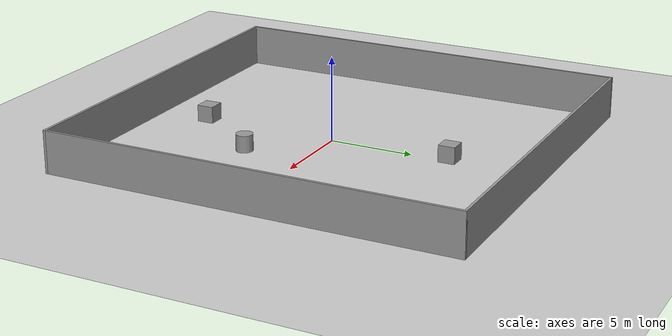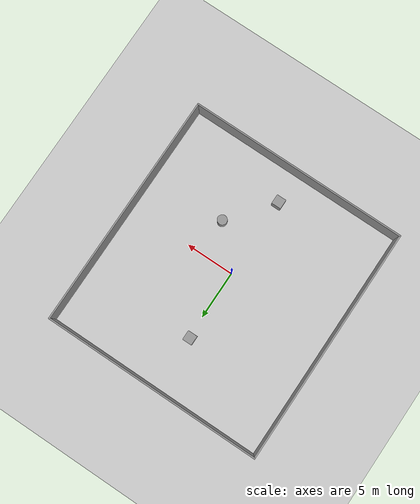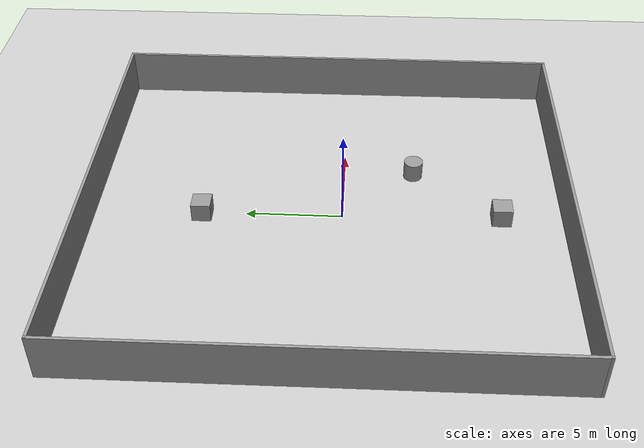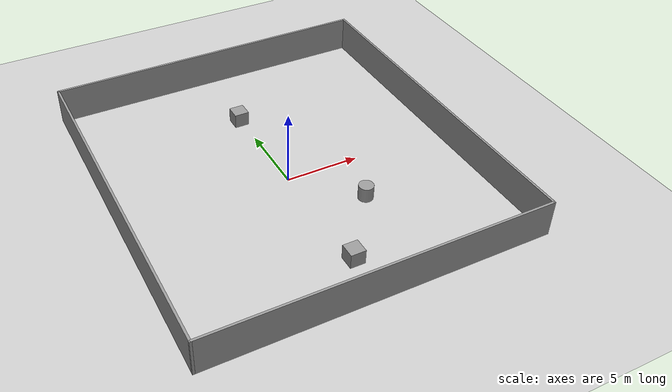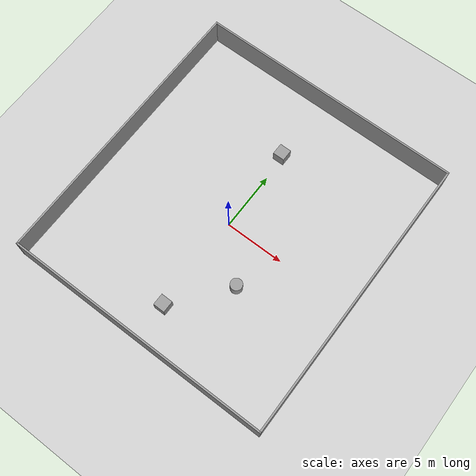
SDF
<sdf version="1.7">
 <world name="default">
  <light name="sun" type="directional">
   <pose>0 0 10 0 -0 0</pose>
   <diffuse>0.8 0.8 0.8 1</diffuse>
   <specular>0.2 0.2 0.2 1</specular>
   <attenuation>
    <range>1000</range>
    <constant>0.9</constant>
    <linear>0.01</linear>
    <quadratic>0.001</quadratic>
   </attenuation>
   <direction>-0.5 0.1 -0.9</direction>
   <spot><inner_angle>0</inner_angle><outer_angle>0</outer_angle><falloff>0</falloff></spot>
  </light>
  <model name="ground_plane">
   <static>1</static>
   <link name="link">
    <collision name="collision">
     <geometry><plane><normal>0 0 1</normal><size>100 100</size></plane></geometry>
     <surface>
      <contact><collide_bitmask>65535</collide_bitmask></contact>
      <friction><ode><mu>100</mu><mu2>50</mu2></ode></friction>
     </surface>
    </collision>
    <visual name="visual">
     <cast_shadows>0</cast_shadows>
     <geometry><plane><normal>0 0 1</normal><size>100 100</size></plane></geometry>
     <material>
      <script><uri>file://media/materials/scripts/gazebo.material</uri><name>Gazebo/Grey</name></script>
     </material>
    </visual>
   </link>
  </model>
  <gravity>0 0 -9.8</gravity>
  <magnetic_field>6e-06 2.3e-05 -4.2e-05</magnetic_field>
  <atmosphere type="adiabatic"/>
  <physics type="ode">
   <max_step_size>0.001</max_step_size>
   <real_time_factor>1</real_time_factor>
   <real_time_update_rate>1000</real_time_update_rate>
  </physics>
  <scene><ambient>0.4 0.4 0.4 1</ambient><background>0.7 0.7 0.7 1</background><shadows>1</shadows></scene>
  <audio><device>default</device></audio>
  <spherical_coordinates>
   <surface_model>EARTH_WGS84</surface_model>
   <latitude_deg>0</latitude_deg>
   <longitude_deg>0</longitude_deg>
   <elevation>0</elevation>
   <heading_deg>0</heading_deg>
  </spherical_coordinates>
  <model name="Untitled">
   <pose>0.158541 0.757398 0 0 -0 0</pose>
   <link name="Wall_21">
    <collision name="Wall_21_Collision">
     <geometry><box><size>24.5 0.15 2.5</size></box></geometry>
     <pose>0 0 1.25 0 -0 0</pose>
    </collision>
    <visual name="Wall_21_Visual">
     <pose>0 0 1.25 0 -0 0</pose>
     <geometry><box><size>24.5 0.15 2.5</size></box></geometry>
     <material>
      <script><uri>file://media/materials/scripts/gazebo.material</uri><name>Gazebo/Grey</name></script>
      <ambient>1 1 1 1</ambient>
     </material>
     <meta><layer>0</layer></meta>
    </visual>
    <pose>11.3 0 0 0 -0 -1.5708</pose>
   </link>
   <link name="Wall_22">
    <collision name="Wall_22_Collision">
     <geometry><box><size>22.75 0.15 2.5</size></box></geometry>
     <pose>0 0 1.25 0 -0 0</pose>
    </collision>
    <visual name="Wall_22_Visual">
     <pose>0 0 1.25 0 -0 0</pose>
     <geometry><box><size>22.75 0.15 2.5</size></box></geometry>
     <material>
      <script><uri>file://media/materials/scripts/gazebo.material</uri><name>Gazebo/Grey</name></script>
      <ambient>1 1 1 1</ambient>
     </material>
     <meta><layer>0</layer></meta>
    </visual>
    <pose>0 -12.175 0 0 -0 3.14159</pose>
   </link>
   <link name="Wall_23">
    <collision name="Wall_23_Collision">
     <geometry><box><size>24.5 0.15 2.5</size></box></geometry>
     <pose>0 0 1.25 0 -0 0</pose>
    </collision>
    <visual name="Wall_23_Visual">
     <pose>0 0 1.25 0 -0 0</pose>
     <geometry><box><size>24.5 0.15 2.5</size></box></geometry>
     <material>
      <script><uri>file://media/materials/scripts/gazebo.material</uri><name>Gazebo/Grey</name></script>
      <ambient>1 1 1 1</ambient>
     </material>
     <meta><layer>0</layer></meta>
    </visual>
    <pose>-11.3 0 0 0 -0 1.5708</pose>
   </link>
   <link name="Wall_24">
    <collision name="Wall_24_Collision">
     <geometry><box><size>22.75 0.15 2.5</size></box></geometry>
     <pose>0 0 1.25 0 -0 0</pose>
    </collision>
    <visual name="Wall_24_Visual">
     <pose>0 0 1.25 0 -0 0</pose>
     <geometry><box><size>22.75 0.15 2.5</size></box></geometry>
     <material>
      <script><uri>file://media/materials/scripts/gazebo.material</uri><name>Gazebo/Grey</name></script>
      <ambient>1 1 1 1</ambient>
     </material>
     <meta><layer>0</layer></meta>
    </visual>
    <pose>0 12.175 0 0 -0 0</pose>
   </link>
   <static>1</static>
  </model>
  <model name="unit_box">
   <pose>-0.165425 7.24191 0.499995 -1e-05 -0 -0</pose>
   <link name="link">
    <inertial>
     <mass>1</mass>
     <inertia>
      <ixx>0.166667</ixx>
      <ixy>0</ixy>
      <ixz>0</ixz>
      <iyy>0.166667</iyy>
      <iyz>0</iyz>
      <izz>0.166667</izz>
     </inertia>
    </inertial>
    <collision name="collision"><geometry><box><size>1 1 1</size></box></geometry></collision>
    <visual name="visual">
     <geometry><box><size>1 1 1</size></box></geometry>
     <material>
      <script><name>Gazebo/Grey</name><uri>file://media/materials/scripts/gazebo.material</uri></script>
     </material>
    </visual>
   </link>
  </model>
  <model name="unit_cylinder">
   <pose>3.55479 -3.70854 0.499992 -3e-06 -4e-06 -0</pose>
   <link name="link">
    <inertial>
     <mass>1</mass>
     <inertia><ixx>0.145833</ixx><ixy>0</ixy><ixz>0</ixz><iyy>0.145833</iyy><iyz>0</iyz><izz>0.125</izz></inertia>
    </inertial>
    <collision name="collision">
     <geometry><cylinder><radius>0.5</radius><length>1</length></cylinder></geometry>
    </collision>
    <visual name="visual">
     <geometry><cylinder><radius>0.5</radius><length>1</length></cylinder></geometry>
     <material>
      <script><name>Gazebo/Grey</name><uri>file://media/materials/scripts/gazebo.material</uri></script>
     </material>
    </visual>
   </link>
  </model>
  <model name="unit_box_0">
   <pose>0.062724 -8.16964 0.5 0 -0 0</pose>
   <link name="link">
    <inertial>
     <mass>1</mass>
     <inertia>
      <ixx>0.166667</ixx>
      <ixy>0</ixy>
      <ixz>0</ixz>
      <iyy>0.166667</iyy>
      <iyz>0</iyz>
      <izz>0.166667</izz>
     </inertia>
    </inertial>
    <collision name="collision"><geometry><box><size>1 1 1</size></box></geometry></collision>
    <visual name="visual">
     <geometry><box><size>1 1 1</size></box></geometry>
     <material>
      <script><name>Gazebo/Grey</name><uri>file://media/materials/scripts/gazebo.material</uri></script>
     </material>
    </visual>
   </link>
  </model>
 </world>
</sdf>
